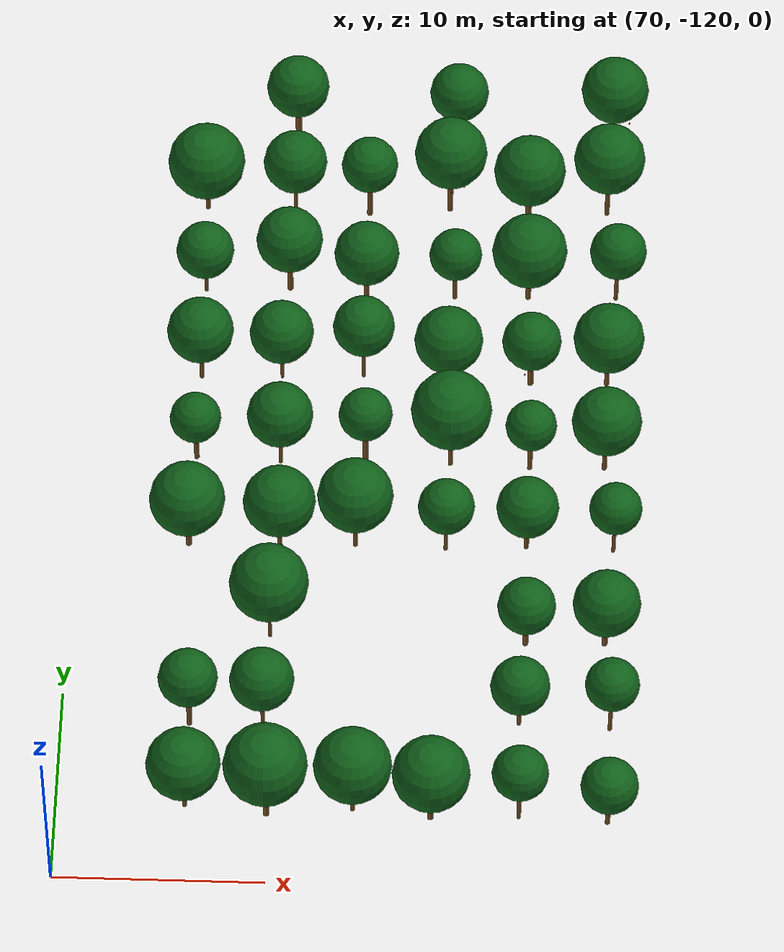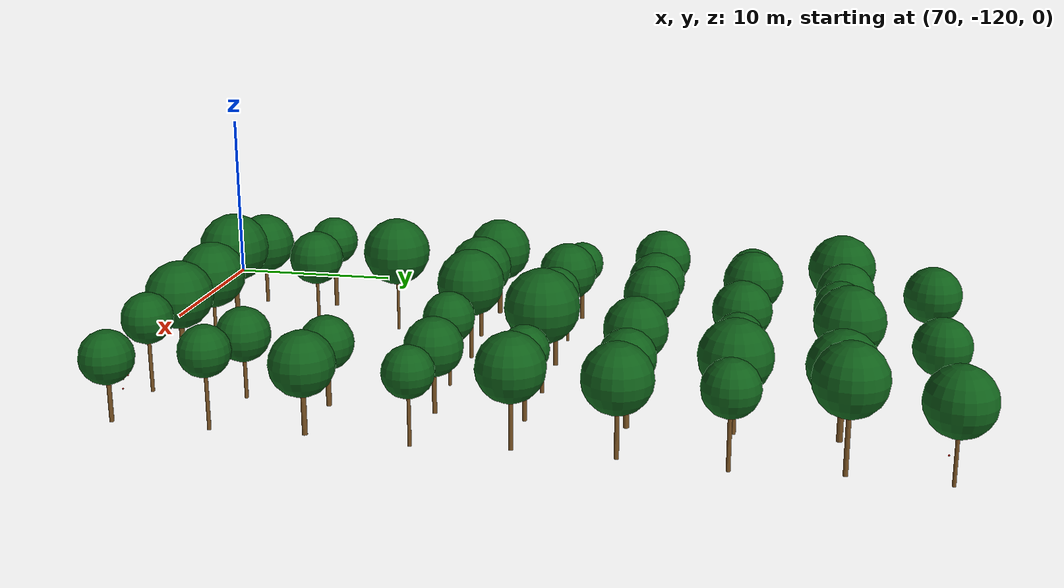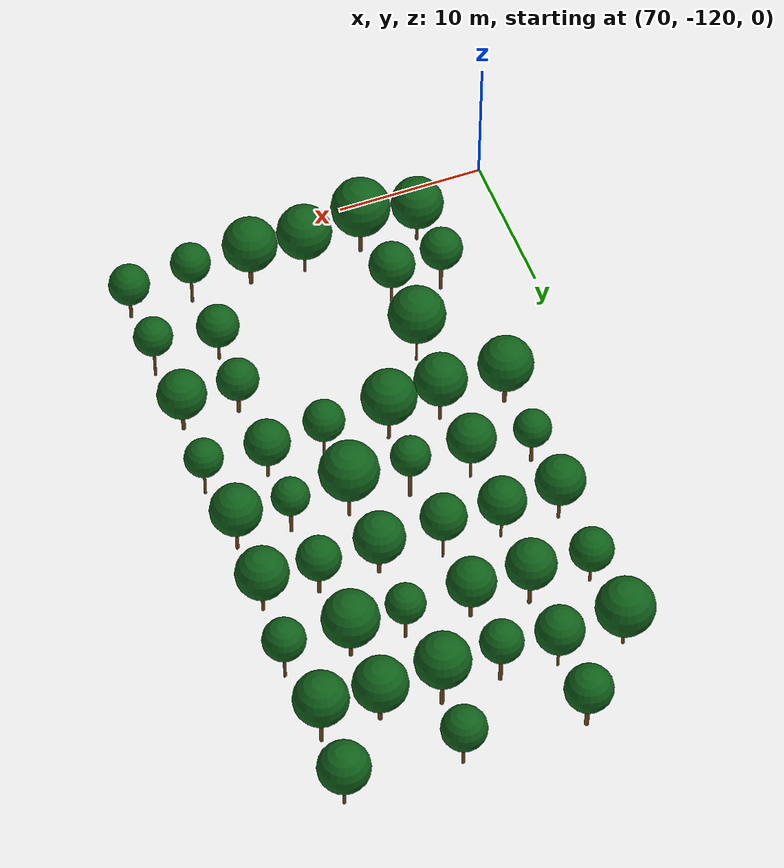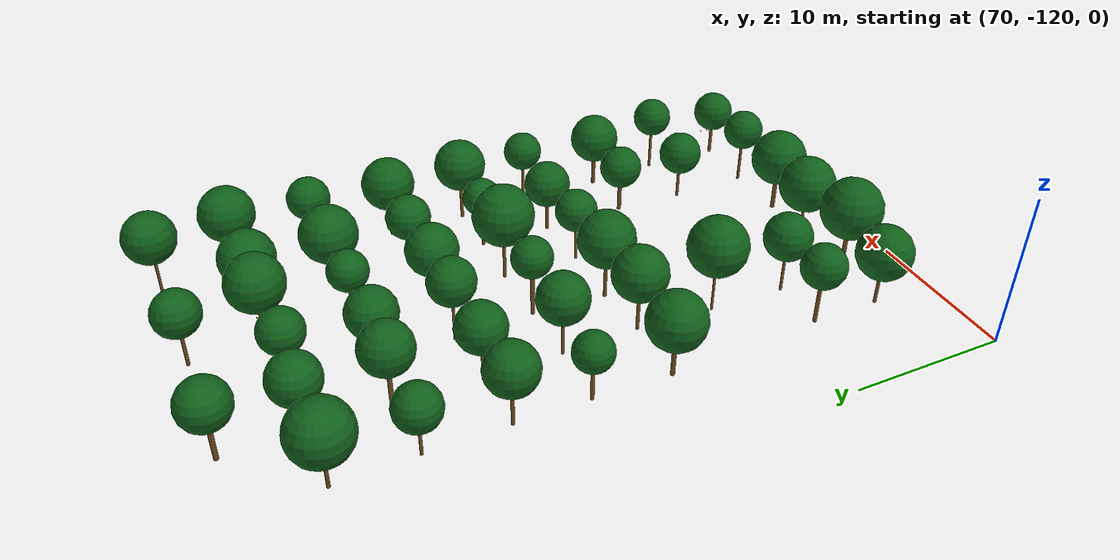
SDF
<sdf version="1.9">
 <world name="cheongsong_orchard">
  <model name="apple_tree_45">
   <static>true</static>
   <pose>76.07 -115.91 0 0 0 0</pose>
   <link name="link">
    <collision name="trunk_col">
     <pose>0 0 0.99 0 0 0</pose>
     <geometry><cylinder><radius>0.105</radius><length>1.99</length></cylinder></geometry>
    </collision>
    <visual name="trunk_vis">
     <pose>0 0 0.99 0 0 0</pose>
     <geometry><cylinder><radius>0.105</radius><length>1.99</length></cylinder></geometry>
     <material><ambient>0.35 0.22 0.08 1</ambient><diffuse>0.45 0.30 0.12 1</diffuse></material>
    </visual>
    <collision name="canopy_col">
     <pose>0 0 3.73 0 0 0</pose>
     <geometry><sphere><radius>1.75</radius></sphere></geometry>
    </collision>
    <visual name="canopy_vis">
     <pose>0 0 3.73 0 0 0</pose>
     <geometry><sphere><radius>1.75</radius></sphere></geometry>
     <material><ambient>0.04 0.28 0.06 1</ambient><diffuse>0.06 0.38 0.10 1</diffuse></material>
    </visual>
   </link>
  </model>
  <model name="apple_tree_46">
   <static>true</static>
   <pose>79.91 -116.28 0 0 0 0</pose>
   <link name="link">
    <collision name="trunk_col">
     <pose>0 0 1.25 0 0 0</pose>
     <geometry><cylinder><radius>0.141</radius><length>2.50</length></cylinder></geometry>
    </collision>
    <visual name="trunk_vis">
     <pose>0 0 1.25 0 0 0</pose>
     <geometry><cylinder><radius>0.141</radius><length>2.50</length></cylinder></geometry>
     <material><ambient>0.35 0.22 0.08 1</ambient><diffuse>0.45 0.30 0.12 1</diffuse></material>
    </visual>
    <collision name="canopy_col">
     <pose>0 0 4.47 0 0 0</pose>
     <geometry><sphere><radius>1.98</radius></sphere></geometry>
    </collision>
    <visual name="canopy_vis">
     <pose>0 0 4.47 0 0 0</pose>
     <geometry><sphere><radius>1.98</radius></sphere></geometry>
     <material><ambient>0.04 0.28 0.06 1</ambient><diffuse>0.06 0.38 0.10 1</diffuse></material>
    </visual>
   </link>
  </model>
  <model name="apple_tree_47">
   <static>true</static>
   <pose>83.96 -115.93 0 0 0 0</pose>
   <link name="link">
    <collision name="trunk_col">
     <pose>0 0 1.09 0 0 0</pose>
     <geometry><cylinder><radius>0.091</radius><length>2.18</length></cylinder></geometry>
    </collision>
    <visual name="trunk_vis">
     <pose>0 0 1.09 0 0 0</pose>
     <geometry><cylinder><radius>0.091</radius><length>2.18</length></cylinder></geometry>
     <material><ambient>0.35 0.22 0.08 1</ambient><diffuse>0.45 0.30 0.12 1</diffuse></material>
    </visual>
    <collision name="canopy_col">
     <pose>0 0 4.02 0 0 0</pose>
     <geometry><sphere><radius>1.84</radius></sphere></geometry>
    </collision>
    <visual name="canopy_vis">
     <pose>0 0 4.02 0 0 0</pose>
     <geometry><sphere><radius>1.84</radius></sphere></geometry>
     <material><ambient>0.04 0.28 0.06 1</ambient><diffuse>0.06 0.38 0.10 1</diffuse></material>
    </visual>
   </link>
  </model>
  <model name="apple_tree_48">
   <static>true</static>
   <pose>87.62 -116.24 0 0 0 0</pose>
   <link name="link">
    <collision name="trunk_col">
     <pose>0 0 1.06 0 0 0</pose>
     <geometry><cylinder><radius>0.145</radius><length>2.12</length></cylinder></geometry>
    </collision>
    <visual name="trunk_vis">
     <pose>0 0 1.06 0 0 0</pose>
     <geometry><cylinder><radius>0.145</radius><length>2.12</length></cylinder></geometry>
     <material><ambient>0.35 0.22 0.08 1</ambient><diffuse>0.45 0.30 0.12 1</diffuse></material>
    </visual>
    <collision name="canopy_col">
     <pose>0 0 3.95 0 0 0</pose>
     <geometry><sphere><radius>1.83</radius></sphere></geometry>
    </collision>
    <visual name="canopy_vis">
     <pose>0 0 3.95 0 0 0</pose>
     <geometry><sphere><radius>1.83</radius></sphere></geometry>
     <material><ambient>0.04 0.28 0.06 1</ambient><diffuse>0.06 0.38 0.10 1</diffuse></material>
    </visual>
   </link>
  </model>
  <model name="apple_tree_49">
   <static>true</static>
   <pose>91.76 -116.09 0 0 0 0</pose>
   <link name="link">
    <collision name="trunk_col">
     <pose>0 0 1.33 0 0 0</pose>
     <geometry><cylinder><radius>0.097</radius><length>2.67</length></cylinder></geometry>
    </collision>
    <visual name="trunk_vis">
     <pose>0 0 1.33 0 0 0</pose>
     <geometry><cylinder><radius>0.097</radius><length>2.67</length></cylinder></geometry>
     <material><ambient>0.35 0.22 0.08 1</ambient><diffuse>0.45 0.30 0.12 1</diffuse></material>
    </visual>
    <collision name="canopy_col">
     <pose>0 0 3.99 0 0 0</pose>
     <geometry><sphere><radius>1.33</radius></sphere></geometry>
    </collision>
    <visual name="canopy_vis">
     <pose>0 0 3.99 0 0 0</pose>
     <geometry><sphere><radius>1.33</radius></sphere></geometry>
     <material><ambient>0.04 0.28 0.06 1</ambient><diffuse>0.06 0.38 0.10 1</diffuse></material>
    </visual>
   </link>
  </model>
  <model name="apple_tree_50">
   <static>true</static>
   <pose>95.93 -116.26 0 0 0 0</pose>
   <link name="link">
    <collision name="trunk_col">
     <pose>0 0 0.99 0 0 0</pose>
     <geometry><cylinder><radius>0.113</radius><length>1.99</length></cylinder></geometry>
    </collision>
    <visual name="trunk_vis">
     <pose>0 0 0.99 0 0 0</pose>
     <geometry><cylinder><radius>0.113</radius><length>1.99</length></cylinder></geometry>
     <material><ambient>0.35 0.22 0.08 1</ambient><diffuse>0.45 0.30 0.12 1</diffuse></material>
    </visual>
    <collision name="canopy_col">
     <pose>0 0 3.35 0 0 0</pose>
     <geometry><sphere><radius>1.36</radius></sphere></geometry>
    </collision>
    <visual name="canopy_vis">
     <pose>0 0 3.35 0 0 0</pose>
     <geometry><sphere><radius>1.36</radius></sphere></geometry>
     <material><ambient>0.04 0.28 0.06 1</ambient><diffuse>0.06 0.38 0.10 1</diffuse></material>
    </visual>
   </link>
  </model>
  <model name="apple_tree_101">
   <static>true</static>
   <pose>76.09 -111.43 0 0 0 0</pose>
   <link name="link">
    <collision name="trunk_col">
     <pose>0 0 1.35 0 0 0</pose>
     <geometry><cylinder><radius>0.124</radius><length>2.69</length></cylinder></geometry>
    </collision>
    <visual name="trunk_vis">
     <pose>0 0 1.35 0 0 0</pose>
     <geometry><cylinder><radius>0.124</radius><length>2.69</length></cylinder></geometry>
     <material><ambient>0.35 0.22 0.08 1</ambient><diffuse>0.45 0.30 0.12 1</diffuse></material>
    </visual>
    <collision name="canopy_col">
     <pose>0 0 4.11 0 0 0</pose>
     <geometry><sphere><radius>1.41</radius></sphere></geometry>
    </collision>
    <visual name="canopy_vis">
     <pose>0 0 4.11 0 0 0</pose>
     <geometry><sphere><radius>1.41</radius></sphere></geometry>
     <material><ambient>0.04 0.28 0.06 1</ambient><diffuse>0.06 0.38 0.10 1</diffuse></material>
    </visual>
   </link>
  </model>
  <model name="apple_tree_102">
   <static>true</static>
   <pose>79.56 -111.35 0 0 0 0</pose>
   <link name="link">
    <collision name="trunk_col">
     <pose>0 0 1.24 0 0 0</pose>
     <geometry><cylinder><radius>0.091</radius><length>2.49</length></cylinder></geometry>
    </collision>
    <visual name="trunk_vis">
     <pose>0 0 1.24 0 0 0</pose>
     <geometry><cylinder><radius>0.091</radius><length>2.49</length></cylinder></geometry>
     <material><ambient>0.35 0.22 0.08 1</ambient><diffuse>0.45 0.30 0.12 1</diffuse></material>
    </visual>
    <collision name="canopy_col">
     <pose>0 0 4.02 0 0 0</pose>
     <geometry><sphere><radius>1.53</radius></sphere></geometry>
    </collision>
    <visual name="canopy_vis">
     <pose>0 0 4.02 0 0 0</pose>
     <geometry><sphere><radius>1.53</radius></sphere></geometry>
     <material><ambient>0.04 0.28 0.06 1</ambient><diffuse>0.06 0.38 0.10 1</diffuse></material>
    </visual>
   </link>
  </model>
  <model name="apple_tree_103">
   <static>true</static>
   <pose>91.68 -110.97 0 0 0 0</pose>
   <link name="link">
    <collision name="trunk_col">
     <pose>0 0 1.01 0 0 0</pose>
     <geometry><cylinder><radius>0.096</radius><length>2.02</length></cylinder></geometry>
    </collision>
    <visual name="trunk_vis">
     <pose>0 0 1.01 0 0 0</pose>
     <geometry><cylinder><radius>0.096</radius><length>2.02</length></cylinder></geometry>
     <material><ambient>0.35 0.22 0.08 1</ambient><diffuse>0.45 0.30 0.12 1</diffuse></material>
    </visual>
    <collision name="canopy_col">
     <pose>0 0 3.43 0 0 0</pose>
     <geometry><sphere><radius>1.41</radius></sphere></geometry>
    </collision>
    <visual name="canopy_vis">
     <pose>0 0 3.43 0 0 0</pose>
     <geometry><sphere><radius>1.41</radius></sphere></geometry>
     <material><ambient>0.04 0.28 0.06 1</ambient><diffuse>0.06 0.38 0.10 1</diffuse></material>
    </visual>
   </link>
  </model>
  <model name="apple_tree_104">
   <static>true</static>
   <pose>95.99 -111.14 0 0 0 0</pose>
   <link name="link">
    <collision name="trunk_col">
     <pose>0 0 1.37 0 0 0</pose>
     <geometry><cylinder><radius>0.094</radius><length>2.73</length></cylinder></geometry>
    </collision>
    <visual name="trunk_vis">
     <pose>0 0 1.37 0 0 0</pose>
     <geometry><cylinder><radius>0.094</radius><length>2.73</length></cylinder></geometry>
     <material><ambient>0.35 0.22 0.08 1</ambient><diffuse>0.45 0.30 0.12 1</diffuse></material>
    </visual>
    <collision name="canopy_col">
     <pose>0 0 4.03 0 0 0</pose>
     <geometry><sphere><radius>1.29</radius></sphere></geometry>
    </collision>
    <visual name="canopy_vis">
     <pose>0 0 4.03 0 0 0</pose>
     <geometry><sphere><radius>1.29</radius></sphere></geometry>
     <material><ambient>0.04 0.28 0.06 1</ambient><diffuse>0.06 0.38 0.10 1</diffuse></material>
    </visual>
   </link>
  </model>
  <model name="apple_tree_154">
   <static>true</static>
   <pose>79.71 -106.40 0 0 0 0</pose>
   <link name="link">
    <collision name="trunk_col">
     <pose>0 0 1.41 0 0 0</pose>
     <geometry><cylinder><radius>0.080</radius><length>2.83</length></cylinder></geometry>
    </collision>
    <visual name="trunk_vis">
     <pose>0 0 1.41 0 0 0</pose>
     <geometry><cylinder><radius>0.080</radius><length>2.83</length></cylinder></geometry>
     <material><ambient>0.35 0.22 0.08 1</ambient><diffuse>0.45 0.30 0.12 1</diffuse></material>
    </visual>
    <collision name="canopy_col">
     <pose>0 0 4.71 0 0 0</pose>
     <geometry><sphere><radius>1.89</radius></sphere></geometry>
    </collision>
    <visual name="canopy_vis">
     <pose>0 0 4.71 0 0 0</pose>
     <geometry><sphere><radius>1.89</radius></sphere></geometry>
     <material><ambient>0.04 0.28 0.06 1</ambient><diffuse>0.06 0.38 0.10 1</diffuse></material>
    </visual>
   </link>
  </model>
  <model name="apple_tree_155">
   <static>true</static>
   <pose>91.91 -106.47 0 0 0 0</pose>
   <link name="link">
    <collision name="trunk_col">
     <pose>0 0 0.98 0 0 0</pose>
     <geometry><cylinder><radius>0.135</radius><length>1.96</length></cylinder></geometry>
    </collision>
    <visual name="trunk_vis">
     <pose>0 0 0.98 0 0 0</pose>
     <geometry><cylinder><radius>0.135</radius><length>1.96</length></cylinder></geometry>
     <material><ambient>0.35 0.22 0.08 1</ambient><diffuse>0.45 0.30 0.12 1</diffuse></material>
    </visual>
    <collision name="canopy_col">
     <pose>0 0 3.35 0 0 0</pose>
     <geometry><sphere><radius>1.39</radius></sphere></geometry>
    </collision>
    <visual name="canopy_vis">
     <pose>0 0 3.35 0 0 0</pose>
     <geometry><sphere><radius>1.39</radius></sphere></geometry>
     <material><ambient>0.04 0.28 0.06 1</ambient><diffuse>0.06 0.38 0.10 1</diffuse></material>
    </visual>
   </link>
  </model>
  <model name="apple_tree_156">
   <static>true</static>
   <pose>95.70 -106.38 0 0 0 0</pose>
   <link name="link">
    <collision name="trunk_col">
     <pose>0 0 1.00 0 0 0</pose>
     <geometry><cylinder><radius>0.132</radius><length>2.00</length></cylinder></geometry>
    </collision>
    <visual name="trunk_vis">
     <pose>0 0 1.00 0 0 0</pose>
     <geometry><cylinder><radius>0.132</radius><length>2.00</length></cylinder></geometry>
     <material><ambient>0.35 0.22 0.08 1</ambient><diffuse>0.45 0.30 0.12 1</diffuse></material>
    </visual>
    <collision name="canopy_col">
     <pose>0 0 3.62 0 0 0</pose>
     <geometry><sphere><radius>1.62</radius></sphere></geometry>
    </collision>
    <visual name="canopy_vis">
     <pose>0 0 3.62 0 0 0</pose>
     <geometry><sphere><radius>1.62</radius></sphere></geometry>
     <material><ambient>0.04 0.28 0.06 1</ambient><diffuse>0.06 0.38 0.10 1</diffuse></material>
    </visual>
   </link>
  </model>
  <model name="apple_tree_199">
   <static>true</static>
   <pose>75.59 -101.26 0 0 0 0</pose>
   <link name="link">
    <collision name="trunk_col">
     <pose>0 0 1.05 0 0 0</pose>
     <geometry><cylinder><radius>0.138</radius><length>2.11</length></cylinder></geometry>
    </collision>
    <visual name="trunk_vis">
     <pose>0 0 1.05 0 0 0</pose>
     <geometry><cylinder><radius>0.138</radius><length>2.11</length></cylinder></geometry>
     <material><ambient>0.35 0.22 0.08 1</ambient><diffuse>0.45 0.30 0.12 1</diffuse></material>
    </visual>
    <collision name="canopy_col">
     <pose>0 0 3.93 0 0 0</pose>
     <geometry><sphere><radius>1.82</radius></sphere></geometry>
    </collision>
    <visual name="canopy_vis">
     <pose>0 0 3.93 0 0 0</pose>
     <geometry><sphere><radius>1.82</radius></sphere></geometry>
     <material><ambient>0.04 0.28 0.06 1</ambient><diffuse>0.06 0.38 0.10 1</diffuse></material>
    </visual>
   </link>
  </model>
  <model name="apple_tree_200">
   <static>true</static>
   <pose>80.00 -101.39 0 0 0 0</pose>
   <link name="link">
    <collision name="trunk_col">
     <pose>0 0 1.19 0 0 0</pose>
     <geometry><cylinder><radius>0.109</radius><length>2.38</length></cylinder></geometry>
    </collision>
    <visual name="trunk_vis">
     <pose>0 0 1.19 0 0 0</pose>
     <geometry><cylinder><radius>0.109</radius><length>2.38</length></cylinder></geometry>
     <material><ambient>0.35 0.22 0.08 1</ambient><diffuse>0.45 0.30 0.12 1</diffuse></material>
    </visual>
    <collision name="canopy_col">
     <pose>0 0 4.12 0 0 0</pose>
     <geometry><sphere><radius>1.74</radius></sphere></geometry>
    </collision>
    <visual name="canopy_vis">
     <pose>0 0 4.12 0 0 0</pose>
     <geometry><sphere><radius>1.74</radius></sphere></geometry>
     <material><ambient>0.04 0.28 0.06 1</ambient><diffuse>0.06 0.38 0.10 1</diffuse></material>
    </visual>
   </link>
  </model>
  <model name="apple_tree_201">
   <static>true</static>
   <pose>83.63 -101.08 0 0 0 0</pose>
   <link name="link">
    <collision name="trunk_col">
     <pose>0 0 1.25 0 0 0</pose>
     <geometry><cylinder><radius>0.111</radius><length>2.51</length></cylinder></geometry>
    </collision>
    <visual name="trunk_vis">
     <pose>0 0 1.25 0 0 0</pose>
     <geometry><cylinder><radius>0.111</radius><length>2.51</length></cylinder></geometry>
     <material><ambient>0.35 0.22 0.08 1</ambient><diffuse>0.45 0.30 0.12 1</diffuse></material>
    </visual>
    <collision name="canopy_col">
     <pose>0 0 4.32 0 0 0</pose>
     <geometry><sphere><radius>1.82</radius></sphere></geometry>
    </collision>
    <visual name="canopy_vis">
     <pose>0 0 4.32 0 0 0</pose>
     <geometry><sphere><radius>1.82</radius></sphere></geometry>
     <material><ambient>0.04 0.28 0.06 1</ambient><diffuse>0.06 0.38 0.10 1</diffuse></material>
    </visual>
   </link>
  </model>
  <model name="apple_tree_202">
   <static>true</static>
   <pose>87.98 -101.19 0 0 0 0</pose>
   <link name="link">
    <collision name="trunk_col">
     <pose>0 0 1.18 0 0 0</pose>
     <geometry><cylinder><radius>0.091</radius><length>2.36</length></cylinder></geometry>
    </collision>
    <visual name="trunk_vis">
     <pose>0 0 1.18 0 0 0</pose>
     <geometry><cylinder><radius>0.091</radius><length>2.36</length></cylinder></geometry>
     <material><ambient>0.35 0.22 0.08 1</ambient><diffuse>0.45 0.30 0.12 1</diffuse></material>
    </visual>
    <collision name="canopy_col">
     <pose>0 0 3.72 0 0 0</pose>
     <geometry><sphere><radius>1.36</radius></sphere></geometry>
    </collision>
    <visual name="canopy_vis">
     <pose>0 0 3.72 0 0 0</pose>
     <geometry><sphere><radius>1.36</radius></sphere></geometry>
     <material><ambient>0.04 0.28 0.06 1</ambient><diffuse>0.06 0.38 0.10 1</diffuse></material>
    </visual>
   </link>
  </model>
  <model name="apple_tree_203">
   <static>true</static>
   <pose>91.87 -100.97 0 0 0 0</pose>
   <link name="link">
    <collision name="trunk_col">
     <pose>0 0 1.00 0 0 0</pose>
     <geometry><cylinder><radius>0.114</radius><length>2.00</length></cylinder></geometry>
    </collision>
    <visual name="trunk_vis">
     <pose>0 0 1.00 0 0 0</pose>
     <geometry><cylinder><radius>0.114</radius><length>2.00</length></cylinder></geometry>
     <material><ambient>0.35 0.22 0.08 1</ambient><diffuse>0.45 0.30 0.12 1</diffuse></material>
    </visual>
    <collision name="canopy_col">
     <pose>0 0 3.50 0 0 0</pose>
     <geometry><sphere><radius>1.50</radius></sphere></geometry>
    </collision>
    <visual name="canopy_vis">
     <pose>0 0 3.50 0 0 0</pose>
     <geometry><sphere><radius>1.50</radius></sphere></geometry>
     <material><ambient>0.04 0.28 0.06 1</ambient><diffuse>0.06 0.38 0.10 1</diffuse></material>
    </visual>
   </link>
  </model>
  <model name="apple_tree_204">
   <static>true</static>
   <pose>96.07 -101.06 0 0 0 0</pose>
   <link name="link">
    <collision name="trunk_col">
     <pose>0 0 1.23 0 0 0</pose>
     <geometry><cylinder><radius>0.089</radius><length>2.45</length></cylinder></geometry>
    </collision>
    <visual name="trunk_vis">
     <pose>0 0 1.23 0 0 0</pose>
     <geometry><cylinder><radius>0.089</radius><length>2.45</length></cylinder></geometry>
     <material><ambient>0.35 0.22 0.08 1</ambient><diffuse>0.45 0.30 0.12 1</diffuse></material>
    </visual>
    <collision name="canopy_col">
     <pose>0 0 3.72 0 0 0</pose>
     <geometry><sphere><radius>1.27</radius></sphere></geometry>
    </collision>
    <visual name="canopy_vis">
     <pose>0 0 3.72 0 0 0</pose>
     <geometry><sphere><radius>1.27</radius></sphere></geometry>
     <material><ambient>0.04 0.28 0.06 1</ambient><diffuse>0.06 0.38 0.10 1</diffuse></material>
    </visual>
   </link>
  </model>
  <model name="apple_tree_250">
   <static>true</static>
   <pose>75.75 -96.22 0 0 0 0</pose>
   <link name="link">
    <collision name="trunk_col">
     <pose>0 0 1.09 0 0 0</pose>
     <geometry><cylinder><radius>0.121</radius><length>2.18</length></cylinder></geometry>
    </collision>
    <visual name="trunk_vis">
     <pose>0 0 1.09 0 0 0</pose>
     <geometry><cylinder><radius>0.121</radius><length>2.18</length></cylinder></geometry>
     <material><ambient>0.35 0.22 0.08 1</ambient><diffuse>0.45 0.30 0.12 1</diffuse></material>
    </visual>
    <collision name="canopy_col">
     <pose>0 0 3.42 0 0 0</pose>
     <geometry><sphere><radius>1.24</radius></sphere></geometry>
    </collision>
    <visual name="canopy_vis">
     <pose>0 0 3.42 0 0 0</pose>
     <geometry><sphere><radius>1.24</radius></sphere></geometry>
     <material><ambient>0.04 0.28 0.06 1</ambient><diffuse>0.06 0.38 0.10 1</diffuse></material>
    </visual>
   </link>
  </model>
  <model name="apple_tree_251">
   <static>true</static>
   <pose>79.85 -96.37 0 0 0 0</pose>
   <link name="link">
    <collision name="trunk_col">
     <pose>0 0 1.24 0 0 0</pose>
     <geometry><cylinder><radius>0.085</radius><length>2.49</length></cylinder></geometry>
    </collision>
    <visual name="trunk_vis">
     <pose>0 0 1.24 0 0 0</pose>
     <geometry><cylinder><radius>0.085</radius><length>2.49</length></cylinder></geometry>
     <material><ambient>0.35 0.22 0.08 1</ambient><diffuse>0.45 0.30 0.12 1</diffuse></material>
    </visual>
    <collision name="canopy_col">
     <pose>0 0 4.09 0 0 0</pose>
     <geometry><sphere><radius>1.60</radius></sphere></geometry>
    </collision>
    <visual name="canopy_vis">
     <pose>0 0 4.09 0 0 0</pose>
     <geometry><sphere><radius>1.60</radius></sphere></geometry>
     <material><ambient>0.04 0.28 0.06 1</ambient><diffuse>0.06 0.38 0.10 1</diffuse></material>
    </visual>
   </link>
  </model>
  <model name="apple_tree_252">
   <static>true</static>
   <pose>83.97 -96.32 0 0 0 0</pose>
   <link name="link">
    <collision name="trunk_col">
     <pose>0 0 1.46 0 0 0</pose>
     <geometry><cylinder><radius>0.128</radius><length>2.91</length></cylinder></geometry>
    </collision>
    <visual name="trunk_vis">
     <pose>0 0 1.46 0 0 0</pose>
     <geometry><cylinder><radius>0.128</radius><length>2.91</length></cylinder></geometry>
     <material><ambient>0.35 0.22 0.08 1</ambient><diffuse>0.45 0.30 0.12 1</diffuse></material>
    </visual>
    <collision name="canopy_col">
     <pose>0 0 4.21 0 0 0</pose>
     <geometry><sphere><radius>1.30</radius></sphere></geometry>
    </collision>
    <visual name="canopy_vis">
     <pose>0 0 4.21 0 0 0</pose>
     <geometry><sphere><radius>1.30</radius></sphere></geometry>
     <material><ambient>0.04 0.28 0.06 1</ambient><diffuse>0.06 0.38 0.10 1</diffuse></material>
    </visual>
   </link>
  </model>
  <model name="apple_tree_253">
   <static>true</static>
   <pose>88.10 -96.25 0 0 0 0</pose>
   <link name="link">
    <collision name="trunk_col">
     <pose>0 0 1.36 0 0 0</pose>
     <geometry><cylinder><radius>0.104</radius><length>2.73</length></cylinder></geometry>
    </collision>
    <visual name="trunk_vis">
     <pose>0 0 1.36 0 0 0</pose>
     <geometry><cylinder><radius>0.104</radius><length>2.73</length></cylinder></geometry>
     <material><ambient>0.35 0.22 0.08 1</ambient><diffuse>0.45 0.30 0.12 1</diffuse></material>
    </visual>
    <collision name="canopy_col">
     <pose>0 0 4.68 0 0 0</pose>
     <geometry><sphere><radius>1.95</radius></sphere></geometry>
    </collision>
    <visual name="canopy_vis">
     <pose>0 0 4.68 0 0 0</pose>
     <geometry><sphere><radius>1.95</radius></sphere></geometry>
     <material><ambient>0.04 0.28 0.06 1</ambient><diffuse>0.06 0.38 0.10 1</diffuse></material>
    </visual>
   </link>
  </model>
  <model name="apple_tree_254">
   <static>true</static>
   <pose>91.96 -96.37 0 0 0 0</pose>
   <link name="link">
    <collision name="trunk_col">
     <pose>0 0 1.22 0 0 0</pose>
     <geometry><cylinder><radius>0.115</radius><length>2.45</length></cylinder></geometry>
    </collision>
    <visual name="trunk_vis">
     <pose>0 0 1.22 0 0 0</pose>
     <geometry><cylinder><radius>0.115</radius><length>2.45</length></cylinder></geometry>
     <material><ambient>0.35 0.22 0.08 1</ambient><diffuse>0.45 0.30 0.12 1</diffuse></material>
    </visual>
    <collision name="canopy_col">
     <pose>0 0 3.68 0 0 0</pose>
     <geometry><sphere><radius>1.24</radius></sphere></geometry>
    </collision>
    <visual name="canopy_vis">
     <pose>0 0 3.68 0 0 0</pose>
     <geometry><sphere><radius>1.24</radius></sphere></geometry>
     <material><ambient>0.04 0.28 0.06 1</ambient><diffuse>0.06 0.38 0.10 1</diffuse></material>
    </visual>
   </link>
  </model>
  <model name="apple_tree_255">
   <static>true</static>
   <pose>95.59 -96.29 0 0 0 0</pose>
   <link name="link">
    <collision name="trunk_col">
     <pose>0 0 1.21 0 0 0</pose>
     <geometry><cylinder><radius>0.112</radius><length>2.41</length></cylinder></geometry>
    </collision>
    <visual name="trunk_vis">
     <pose>0 0 1.21 0 0 0</pose>
     <geometry><cylinder><radius>0.112</radius><length>2.41</length></cylinder></geometry>
     <material><ambient>0.35 0.22 0.08 1</ambient><diffuse>0.45 0.30 0.12 1</diffuse></material>
    </visual>
    <collision name="canopy_col">
     <pose>0 0 4.10 0 0 0</pose>
     <geometry><sphere><radius>1.69</radius></sphere></geometry>
    </collision>
    <visual name="canopy_vis">
     <pose>0 0 4.10 0 0 0</pose>
     <geometry><sphere><radius>1.69</radius></sphere></geometry>
     <material><ambient>0.04 0.28 0.06 1</ambient><diffuse>0.06 0.38 0.10 1</diffuse></material>
    </visual>
   </link>
  </model>
  <model name="apple_tree_306">
   <static>true</static>
   <pose>75.79 -91.45 0 0 0 0</pose>
   <link name="link">
    <collision name="trunk_col">
     <pose>0 0 1.18 0 0 0</pose>
     <geometry><cylinder><radius>0.109</radius><length>2.35</length></cylinder></geometry>
    </collision>
    <visual name="trunk_vis">
     <pose>0 0 1.18 0 0 0</pose>
     <geometry><cylinder><radius>0.109</radius><length>2.35</length></cylinder></geometry>
     <material><ambient>0.35 0.22 0.08 1</ambient><diffuse>0.45 0.30 0.12 1</diffuse></material>
    </visual>
    <collision name="canopy_col">
     <pose>0 0 3.98 0 0 0</pose>
     <geometry><sphere><radius>1.62</radius></sphere></geometry>
    </collision>
    <visual name="canopy_vis">
     <pose>0 0 3.98 0 0 0</pose>
     <geometry><sphere><radius>1.62</radius></sphere></geometry>
     <material><ambient>0.04 0.28 0.06 1</ambient><diffuse>0.06 0.38 0.10 1</diffuse></material>
    </visual>
   </link>
  </model>
  <model name="apple_tree_307">
   <static>true</static>
   <pose>79.74 -91.34 0 0 0 0</pose>
   <link name="link">
    <collision name="trunk_col">
     <pose>0 0 1.14 0 0 0</pose>
     <geometry><cylinder><radius>0.086</radius><length>2.27</length></cylinder></geometry>
    </collision>
    <visual name="trunk_vis">
     <pose>0 0 1.14 0 0 0</pose>
     <geometry><cylinder><radius>0.086</radius><length>2.27</length></cylinder></geometry>
     <material><ambient>0.35 0.22 0.08 1</ambient><diffuse>0.45 0.30 0.12 1</diffuse></material>
    </visual>
    <collision name="canopy_col">
     <pose>0 0 3.83 0 0 0</pose>
     <geometry><sphere><radius>1.56</radius></sphere></geometry>
    </collision>
    <visual name="canopy_vis">
     <pose>0 0 3.83 0 0 0</pose>
     <geometry><sphere><radius>1.56</radius></sphere></geometry>
     <material><ambient>0.04 0.28 0.06 1</ambient><diffuse>0.06 0.38 0.10 1</diffuse></material>
    </visual>
   </link>
  </model>
  <model name="apple_tree_308">
   <static>true</static>
   <pose>83.73 -91.17 0 0 0 0</pose>
   <link name="link">
    <collision name="trunk_col">
     <pose>0 0 1.38 0 0 0</pose>
     <geometry><cylinder><radius>0.084</radius><length>2.76</length></cylinder></geometry>
    </collision>
    <visual name="trunk_vis">
     <pose>0 0 1.38 0 0 0</pose>
     <geometry><cylinder><radius>0.084</radius><length>2.76</length></cylinder></geometry>
     <material><ambient>0.35 0.22 0.08 1</ambient><diffuse>0.45 0.30 0.12 1</diffuse></material>
    </visual>
    <collision name="canopy_col">
     <pose>0 0 4.26 0 0 0</pose>
     <geometry><sphere><radius>1.50</radius></sphere></geometry>
    </collision>
    <visual name="canopy_vis">
     <pose>0 0 4.26 0 0 0</pose>
     <geometry><sphere><radius>1.50</radius></sphere></geometry>
     <material><ambient>0.04 0.28 0.06 1</ambient><diffuse>0.06 0.38 0.10 1</diffuse></material>
    </visual>
   </link>
  </model>
  <model name="apple_tree_309">
   <static>true</static>
   <pose>87.87 -91.47 0 0 0 0</pose>
   <link name="link">
    <collision name="trunk_col">
     <pose>0 0 1.01 0 0 0</pose>
     <geometry><cylinder><radius>0.136</radius><length>2.02</length></cylinder></geometry>
    </collision>
    <visual name="trunk_vis">
     <pose>0 0 1.01 0 0 0</pose>
     <geometry><cylinder><radius>0.136</radius><length>2.02</length></cylinder></geometry>
     <material><ambient>0.35 0.22 0.08 1</ambient><diffuse>0.45 0.30 0.12 1</diffuse></material>
    </visual>
    <collision name="canopy_col">
     <pose>0 0 3.69 0 0 0</pose>
     <geometry><sphere><radius>1.67</radius></sphere></geometry>
    </collision>
    <visual name="canopy_vis">
     <pose>0 0 3.69 0 0 0</pose>
     <geometry><sphere><radius>1.67</radius></sphere></geometry>
     <material><ambient>0.04 0.28 0.06 1</ambient><diffuse>0.06 0.38 0.10 1</diffuse></material>
    </visual>
   </link>
  </model>
  <model name="apple_tree_310">
   <static>true</static>
   <pose>91.91 -91.36 0 0 0 0</pose>
   <link name="link">
    <collision name="trunk_col">
     <pose>0 0 1.08 0 0 0</pose>
     <geometry><cylinder><radius>0.143</radius><length>2.15</length></cylinder></geometry>
    </collision>
    <visual name="trunk_vis">
     <pose>0 0 1.08 0 0 0</pose>
     <geometry><cylinder><radius>0.143</radius><length>2.15</length></cylinder></geometry>
     <material><ambient>0.35 0.22 0.08 1</ambient><diffuse>0.45 0.30 0.12 1</diffuse></material>
    </visual>
    <collision name="canopy_col">
     <pose>0 0 3.60 0 0 0</pose>
     <geometry><sphere><radius>1.44</radius></sphere></geometry>
    </collision>
    <visual name="canopy_vis">
     <pose>0 0 3.60 0 0 0</pose>
     <geometry><sphere><radius>1.44</radius></sphere></geometry>
     <material><ambient>0.04 0.28 0.06 1</ambient><diffuse>0.06 0.38 0.10 1</diffuse></material>
    </visual>
   </link>
  </model>
  <model name="apple_tree_311">
   <static>true</static>
   <pose>95.65 -91.30 0 0 0 0</pose>
   <link name="link">
    <collision name="trunk_col">
     <pose>0 0 1.11 0 0 0</pose>
     <geometry><cylinder><radius>0.113</radius><length>2.23</length></cylinder></geometry>
    </collision>
    <visual name="trunk_vis">
     <pose>0 0 1.11 0 0 0</pose>
     <geometry><cylinder><radius>0.113</radius><length>2.23</length></cylinder></geometry>
     <material><ambient>0.35 0.22 0.08 1</ambient><diffuse>0.45 0.30 0.12 1</diffuse></material>
    </visual>
    <collision name="canopy_col">
     <pose>0 0 3.94 0 0 0</pose>
     <geometry><sphere><radius>1.72</radius></sphere></geometry>
    </collision>
    <visual name="canopy_vis">
     <pose>0 0 3.94 0 0 0</pose>
     <geometry><sphere><radius>1.72</radius></sphere></geometry>
     <material><ambient>0.04 0.28 0.06 1</ambient><diffuse>0.06 0.38 0.10 1</diffuse></material>
    </visual>
   </link>
  </model>
  <model name="apple_tree_361">
   <static>true</static>
   <pose>75.78 -86.23 0 0 0 0</pose>
   <link name="link">
    <collision name="trunk_col">
     <pose>0 0 0.98 0 0 0</pose>
     <geometry><cylinder><radius>0.095</radius><length>1.95</length></cylinder></geometry>
    </collision>
    <visual name="trunk_vis">
     <pose>0 0 0.98 0 0 0</pose>
     <geometry><cylinder><radius>0.095</radius><length>1.95</length></cylinder></geometry>
     <material><ambient>0.35 0.22 0.08 1</ambient><diffuse>0.45 0.30 0.12 1</diffuse></material>
    </visual>
    <collision name="canopy_col">
     <pose>0 0 3.38 0 0 0</pose>
     <geometry><sphere><radius>1.42</radius></sphere></geometry>
    </collision>
    <visual name="canopy_vis">
     <pose>0 0 3.38 0 0 0</pose>
     <geometry><sphere><radius>1.42</radius></sphere></geometry>
     <material><ambient>0.04 0.28 0.06 1</ambient><diffuse>0.06 0.38 0.10 1</diffuse></material>
    </visual>
   </link>
  </model>
  <model name="apple_tree_362">
   <static>true</static>
   <pose>79.93 -86.01 0 0 0 0</pose>
   <link name="link">
    <collision name="trunk_col">
     <pose>0 0 1.26 0 0 0</pose>
     <geometry><cylinder><radius>0.136</radius><length>2.51</length></cylinder></geometry>
    </collision>
    <visual name="trunk_vis">
     <pose>0 0 1.26 0 0 0</pose>
     <geometry><cylinder><radius>0.136</radius><length>2.51</length></cylinder></geometry>
     <material><ambient>0.35 0.22 0.08 1</ambient><diffuse>0.45 0.30 0.12 1</diffuse></material>
    </visual>
    <collision name="canopy_col">
     <pose>0 0 4.14 0 0 0</pose>
     <geometry><sphere><radius>1.63</radius></sphere></geometry>
    </collision>
    <visual name="canopy_vis">
     <pose>0 0 4.14 0 0 0</pose>
     <geometry><sphere><radius>1.63</radius></sphere></geometry>
     <material><ambient>0.04 0.28 0.06 1</ambient><diffuse>0.06 0.38 0.10 1</diffuse></material>
    </visual>
   </link>
  </model>
  <model name="apple_tree_363">
   <static>true</static>
   <pose>83.73 -86.37 0 0 0 0</pose>
   <link name="link">
    <collision name="trunk_col">
     <pose>0 0 1.03 0 0 0</pose>
     <geometry><cylinder><radius>0.127</radius><length>2.06</length></cylinder></geometry>
    </collision>
    <visual name="trunk_vis">
     <pose>0 0 1.03 0 0 0</pose>
     <geometry><cylinder><radius>0.127</radius><length>2.06</length></cylinder></geometry>
     <material><ambient>0.35 0.22 0.08 1</ambient><diffuse>0.45 0.30 0.12 1</diffuse></material>
    </visual>
    <collision name="canopy_col">
     <pose>0 0 3.65 0 0 0</pose>
     <geometry><sphere><radius>1.59</radius></sphere></geometry>
    </collision>
    <visual name="canopy_vis">
     <pose>0 0 3.65 0 0 0</pose>
     <geometry><sphere><radius>1.59</radius></sphere></geometry>
     <material><ambient>0.04 0.28 0.06 1</ambient><diffuse>0.06 0.38 0.10 1</diffuse></material>
    </visual>
   </link>
  </model>
  <model name="apple_tree_364">
   <static>true</static>
   <pose>88.09 -86.30 0 0 0 0</pose>
   <link name="link">
    <collision name="trunk_col">
     <pose>0 0 1.16 0 0 0</pose>
     <geometry><cylinder><radius>0.107</radius><length>2.33</length></cylinder></geometry>
    </collision>
    <visual name="trunk_vis">
     <pose>0 0 1.16 0 0 0</pose>
     <geometry><cylinder><radius>0.107</radius><length>2.33</length></cylinder></geometry>
     <material><ambient>0.35 0.22 0.08 1</ambient><diffuse>0.45 0.30 0.12 1</diffuse></material>
    </visual>
    <collision name="canopy_col">
     <pose>0 0 3.62 0 0 0</pose>
     <geometry><sphere><radius>1.29</radius></sphere></geometry>
    </collision>
    <visual name="canopy_vis">
     <pose>0 0 3.62 0 0 0</pose>
     <geometry><sphere><radius>1.29</radius></sphere></geometry>
     <material><ambient>0.04 0.28 0.06 1</ambient><diffuse>0.06 0.38 0.10 1</diffuse></material>
    </visual>
   </link>
  </model>
  <model name="apple_tree_365">
   <static>true</static>
   <pose>91.72 -86.21 0 0 0 0</pose>
   <link name="link">
    <collision name="trunk_col">
     <pose>0 0 1.06 0 0 0</pose>
     <geometry><cylinder><radius>0.127</radius><length>2.12</length></cylinder></geometry>
    </collision>
    <visual name="trunk_vis">
     <pose>0 0 1.06 0 0 0</pose>
     <geometry><cylinder><radius>0.127</radius><length>2.12</length></cylinder></geometry>
     <material><ambient>0.35 0.22 0.08 1</ambient><diffuse>0.45 0.30 0.12 1</diffuse></material>
    </visual>
    <collision name="canopy_col">
     <pose>0 0 3.96 0 0 0</pose>
     <geometry><sphere><radius>1.84</radius></sphere></geometry>
    </collision>
    <visual name="canopy_vis">
     <pose>0 0 3.96 0 0 0</pose>
     <geometry><sphere><radius>1.84</radius></sphere></geometry>
     <material><ambient>0.04 0.28 0.06 1</ambient><diffuse>0.06 0.38 0.10 1</diffuse></material>
    </visual>
   </link>
  </model>
  <model name="apple_tree_366">
   <static>true</static>
   <pose>96.06 -86.14 0 0 0 0</pose>
   <link name="link">
    <collision name="trunk_col">
     <pose>0 0 1.30 0 0 0</pose>
     <geometry><cylinder><radius>0.102</radius><length>2.61</length></cylinder></geometry>
    </collision>
    <visual name="trunk_vis">
     <pose>0 0 1.30 0 0 0</pose>
     <geometry><cylinder><radius>0.102</radius><length>2.61</length></cylinder></geometry>
     <material><ambient>0.35 0.22 0.08 1</ambient><diffuse>0.45 0.30 0.12 1</diffuse></material>
    </visual>
    <collision name="canopy_col">
     <pose>0 0 4.00 0 0 0</pose>
     <geometry><sphere><radius>1.39</radius></sphere></geometry>
    </collision>
    <visual name="canopy_vis">
     <pose>0 0 4.00 0 0 0</pose>
     <geometry><sphere><radius>1.39</radius></sphere></geometry>
     <material><ambient>0.04 0.28 0.06 1</ambient><diffuse>0.06 0.38 0.10 1</diffuse></material>
    </visual>
   </link>
  </model>
  <model name="apple_tree_417">
   <static>true</static>
   <pose>75.64 -81.18 0 0 0 0</pose>
   <link name="link">
    <collision name="trunk_col">
     <pose>0 0 1.00 0 0 0</pose>
     <geometry><cylinder><radius>0.108</radius><length>1.99</length></cylinder></geometry>
    </collision>
    <visual name="trunk_vis">
     <pose>0 0 1.00 0 0 0</pose>
     <geometry><cylinder><radius>0.108</radius><length>1.99</length></cylinder></geometry>
     <material><ambient>0.35 0.22 0.08 1</ambient><diffuse>0.45 0.30 0.12 1</diffuse></material>
    </visual>
    <collision name="canopy_col">
     <pose>0 0 3.90 0 0 0</pose>
     <geometry><sphere><radius>1.90</radius></sphere></geometry>
    </collision>
    <visual name="canopy_vis">
     <pose>0 0 3.90 0 0 0</pose>
     <geometry><sphere><radius>1.90</radius></sphere></geometry>
     <material><ambient>0.04 0.28 0.06 1</ambient><diffuse>0.06 0.38 0.10 1</diffuse></material>
    </visual>
   </link>
  </model>
  <model name="apple_tree_418">
   <static>true</static>
   <pose>80.03 -81.03 0 0 0 0</pose>
   <link name="link">
    <collision name="trunk_col">
     <pose>0 0 1.13 0 0 0</pose>
     <geometry><cylinder><radius>0.086</radius><length>2.25</length></cylinder></geometry>
    </collision>
    <visual name="trunk_vis">
     <pose>0 0 1.13 0 0 0</pose>
     <geometry><cylinder><radius>0.086</radius><length>2.25</length></cylinder></geometry>
     <material><ambient>0.35 0.22 0.08 1</ambient><diffuse>0.45 0.30 0.12 1</diffuse></material>
    </visual>
    <collision name="canopy_col">
     <pose>0 0 3.82 0 0 0</pose>
     <geometry><sphere><radius>1.57</radius></sphere></geometry>
    </collision>
    <visual name="canopy_vis">
     <pose>0 0 3.82 0 0 0</pose>
     <geometry><sphere><radius>1.57</radius></sphere></geometry>
     <material><ambient>0.04 0.28 0.06 1</ambient><diffuse>0.06 0.38 0.10 1</diffuse></material>
    </visual>
   </link>
  </model>
  <model name="apple_tree_419">
   <static>true</static>
   <pose>83.73 -81.31 0 0 0 0</pose>
   <link name="link">
    <collision name="trunk_col">
     <pose>0 0 1.36 0 0 0</pose>
     <geometry><cylinder><radius>0.132</radius><length>2.71</length></cylinder></geometry>
    </collision>
    <visual name="trunk_vis">
     <pose>0 0 1.36 0 0 0</pose>
     <geometry><cylinder><radius>0.132</radius><length>2.71</length></cylinder></geometry>
     <material><ambient>0.35 0.22 0.08 1</ambient><diffuse>0.45 0.30 0.12 1</diffuse></material>
    </visual>
    <collision name="canopy_col">
     <pose>0 0 4.11 0 0 0</pose>
     <geometry><sphere><radius>1.39</radius></sphere></geometry>
    </collision>
    <visual name="canopy_vis">
     <pose>0 0 4.11 0 0 0</pose>
     <geometry><sphere><radius>1.39</radius></sphere></geometry>
     <material><ambient>0.04 0.28 0.06 1</ambient><diffuse>0.06 0.38 0.10 1</diffuse></material>
    </visual>
   </link>
  </model>
  <model name="apple_tree_420">
   <static>true</static>
   <pose>87.73 -80.91 0 0 0 0</pose>
   <link name="link">
    <collision name="trunk_col">
     <pose>0 0 1.46 0 0 0</pose>
     <geometry><cylinder><radius>0.134</radius><length>2.92</length></cylinder></geometry>
    </collision>
    <visual name="trunk_vis">
     <pose>0 0 1.46 0 0 0</pose>
     <geometry><cylinder><radius>0.134</radius><length>2.92</length></cylinder></geometry>
     <material><ambient>0.35 0.22 0.08 1</ambient><diffuse>0.45 0.30 0.12 1</diffuse></material>
    </visual>
    <collision name="canopy_col">
     <pose>0 0 4.71 0 0 0</pose>
     <geometry><sphere><radius>1.79</radius></sphere></geometry>
    </collision>
    <visual name="canopy_vis">
     <pose>0 0 4.71 0 0 0</pose>
     <geometry><sphere><radius>1.79</radius></sphere></geometry>
     <material><ambient>0.04 0.28 0.06 1</ambient><diffuse>0.06 0.38 0.10 1</diffuse></material>
    </visual>
   </link>
  </model>
  <model name="apple_tree_421">
   <static>true</static>
   <pose>91.65 -81.19 0 0 0 0</pose>
   <link name="link">
    <collision name="trunk_col">
     <pose>0 0 1.00 0 0 0</pose>
     <geometry><cylinder><radius>0.150</radius><length>2.01</length></cylinder></geometry>
    </collision>
    <visual name="trunk_vis">
     <pose>0 0 1.00 0 0 0</pose>
     <geometry><cylinder><radius>0.150</radius><length>2.01</length></cylinder></geometry>
     <material><ambient>0.35 0.22 0.08 1</ambient><diffuse>0.45 0.30 0.12 1</diffuse></material>
    </visual>
    <collision name="canopy_col">
     <pose>0 0 3.78 0 0 0</pose>
     <geometry><sphere><radius>1.77</radius></sphere></geometry>
    </collision>
    <visual name="canopy_vis">
     <pose>0 0 3.78 0 0 0</pose>
     <geometry><sphere><radius>1.77</radius></sphere></geometry>
     <material><ambient>0.04 0.28 0.06 1</ambient><diffuse>0.06 0.38 0.10 1</diffuse></material>
    </visual>
   </link>
  </model>
  <model name="apple_tree_422">
   <static>true</static>
   <pose>95.57 -80.94 0 0 0 0</pose>
   <link name="link">
    <collision name="trunk_col">
     <pose>0 0 1.41 0 0 0</pose>
     <geometry><cylinder><radius>0.116</radius><length>2.82</length></cylinder></geometry>
    </collision>
    <visual name="trunk_vis">
     <pose>0 0 1.41 0 0 0</pose>
     <geometry><cylinder><radius>0.116</radius><length>2.82</length></cylinder></geometry>
     <material><ambient>0.35 0.22 0.08 1</ambient><diffuse>0.45 0.30 0.12 1</diffuse></material>
    </visual>
    <collision name="canopy_col">
     <pose>0 0 4.59 0 0 0</pose>
     <geometry><sphere><radius>1.76</radius></sphere></geometry>
    </collision>
    <visual name="canopy_vis">
     <pose>0 0 4.59 0 0 0</pose>
     <geometry><sphere><radius>1.76</radius></sphere></geometry>
     <material><ambient>0.04 0.28 0.06 1</ambient><diffuse>0.06 0.38 0.10 1</diffuse></material>
    </visual>
   </link>
  </model>
  <model name="apple_tree_476">
   <static>true</static>
   <pose>80.00 -76.41 0 0 0 0</pose>
   <link name="link">
    <collision name="trunk_col">
     <pose>0 0 1.18 0 0 0</pose>
     <geometry><cylinder><radius>0.149</radius><length>2.36</length></cylinder></geometry>
    </collision>
    <visual name="trunk_vis">
     <pose>0 0 1.18 0 0 0</pose>
     <geometry><cylinder><radius>0.149</radius><length>2.36</length></cylinder></geometry>
     <material><ambient>0.35 0.22 0.08 1</ambient><diffuse>0.45 0.30 0.12 1</diffuse></material>
    </visual>
    <collision name="canopy_col">
     <pose>0 0 3.91 0 0 0</pose>
     <geometry><sphere><radius>1.55</radius></sphere></geometry>
    </collision>
    <visual name="canopy_vis">
     <pose>0 0 3.91 0 0 0</pose>
     <geometry><sphere><radius>1.55</radius></sphere></geometry>
     <material><ambient>0.04 0.28 0.06 1</ambient><diffuse>0.06 0.38 0.10 1</diffuse></material>
    </visual>
   </link>
  </model>
  <model name="apple_tree_478">
   <static>true</static>
   <pose>88.06 -76.45 0 0 0 0</pose>
   <link name="link">
    <collision name="trunk_col">
     <pose>0 0 1.16 0 0 0</pose>
     <geometry><cylinder><radius>0.108</radius><length>2.33</length></cylinder></geometry>
    </collision>
    <visual name="trunk_vis">
     <pose>0 0 1.16 0 0 0</pose>
     <geometry><cylinder><radius>0.108</radius><length>2.33</length></cylinder></geometry>
     <material><ambient>0.35 0.22 0.08 1</ambient><diffuse>0.45 0.30 0.12 1</diffuse></material>
    </visual>
    <collision name="canopy_col">
     <pose>0 0 3.79 0 0 0</pose>
     <geometry><sphere><radius>1.46</radius></sphere></geometry>
    </collision>
    <visual name="canopy_vis">
     <pose>0 0 3.79 0 0 0</pose>
     <geometry><sphere><radius>1.46</radius></sphere></geometry>
     <material><ambient>0.04 0.28 0.06 1</ambient><diffuse>0.06 0.38 0.10 1</diffuse></material>
    </visual>
   </link>
  </model>
  <model name="apple_tree_480">
   <static>true</static>
   <pose>95.82 -76.24 0 0 0 0</pose>
   <link name="link">
    <collision name="trunk_col">
     <pose>0 0 1.18 0 0 0</pose>
     <geometry><cylinder><radius>0.090</radius><length>2.35</length></cylinder></geometry>
    </collision>
    <visual name="trunk_vis">
     <pose>0 0 1.18 0 0 0</pose>
     <geometry><cylinder><radius>0.090</radius><length>2.35</length></cylinder></geometry>
     <material><ambient>0.35 0.22 0.08 1</ambient><diffuse>0.45 0.30 0.12 1</diffuse></material>
    </visual>
    <collision name="canopy_col">
     <pose>0 0 4.02 0 0 0</pose>
     <geometry><sphere><radius>1.67</radius></sphere></geometry>
    </collision>
    <visual name="canopy_vis">
     <pose>0 0 4.02 0 0 0</pose>
     <geometry><sphere><radius>1.67</radius></sphere></geometry>
     <material><ambient>0.04 0.28 0.06 1</ambient><diffuse>0.06 0.38 0.10 1</diffuse></material>
    </visual>
   </link>
  </model>
  <model name="apple_50_0">
   <static>true</static>
   <pose>95.38 -115.49 2.27 0 0 0</pose>
   <link name="link">
    <visual name="visual">
     <geometry><sphere><radius>0.04</radius></sphere></geometry>
     <material><ambient>0.7 0.05 0.02 1</ambient><diffuse>0.9 0.10 0.05 1</diffuse></material>
    </visual>
   </link>
  </model>
  <model name="apple_50_1">
   <static>true</static>
   <pose>96.07 -115.45 1.82 0 0 0</pose>
   <link name="link">
    <visual name="visual">
     <geometry><sphere><radius>0.04</radius></sphere></geometry>
     <material><ambient>0.7 0.05 0.02 1</ambient><diffuse>0.9 0.10 0.05 1</diffuse></material>
    </visual>
   </link>
  </model>
  <model name="apple_50_2">
   <static>true</static>
   <pose>95.87 -115.91 2.18 0 0 0</pose>
   <link name="link">
    <visual name="visual">
     <geometry><sphere><radius>0.04</radius></sphere></geometry>
     <material><ambient>0.7 0.05 0.02 1</ambient><diffuse>0.9 0.10 0.05 1</diffuse></material>
    </visual>
   </link>
  </model>
  <model name="apple_50_3">
   <static>true</static>
   <pose>95.51 -115.70 2.09 0 0 0</pose>
   <link name="link">
    <visual name="visual">
     <geometry><sphere><radius>0.04</radius></sphere></geometry>
     <material><ambient>0.7 0.05 0.02 1</ambient><diffuse>0.9 0.10 0.05 1</diffuse></material>
    </visual>
   </link>
  </model>
  <model name="apple_200_0">
   <static>true</static>
   <pose>80.95 -101.57 2.60 0 0 0</pose>
   <link name="link">
    <visual name="visual">
     <geometry><sphere><radius>0.04</radius></sphere></geometry>
     <material><ambient>0.7 0.05 0.02 1</ambient><diffuse>0.9 0.10 0.05 1</diffuse></material>
    </visual>
   </link>
  </model>
  <model name="apple_200_1">
   <static>true</static>
   <pose>80.11 -101.93 1.97 0 0 0</pose>
   <link name="link">
    <visual name="visual">
     <geometry><sphere><radius>0.04</radius></sphere></geometry>
     <material><ambient>0.7 0.05 0.02 1</ambient><diffuse>0.9 0.10 0.05 1</diffuse></material>
    </visual>
   </link>
  </model>
  <model name="apple_200_2">
   <static>true</static>
   <pose>81.13 -101.64 2.78 0 0 0</pose>
   <link name="link">
    <visual name="visual">
     <geometry><sphere><radius>0.04</radius></sphere></geometry>
     <material><ambient>0.7 0.05 0.02 1</ambient><diffuse>0.9 0.10 0.05 1</diffuse></material>
    </visual>
   </link>
  </model>
  <model name="apple_250_3">
   <static>true</static>
   <pose>75.79 -96.77 2.04 0 0 0</pose>
   <link name="link">
    <visual name="visual">
     <geometry><sphere><radius>0.04</radius></sphere></geometry>
     <material><ambient>0.7 0.05 0.02 1</ambient><diffuse>0.9 0.10 0.05 1</diffuse></material>
    </visual>
   </link>
  </model>
  <model name="apple_310_0">
   <static>true</static>
   <pose>92.02 -90.91 2.33 0 0 0</pose>
   <link name="link">
    <visual name="visual">
     <geometry><sphere><radius>0.04</radius></sphere></geometry>
     <material><ambient>0.7 0.05 0.02 1</ambient><diffuse>0.9 0.10 0.05 1</diffuse></material>
    </visual>
   </link>
  </model>
  <model name="apple_310_1">
   <static>true</static>
   <pose>91.89 -92.30 2.50 0 0 0</pose>
   <link name="link">
    <visual name="visual">
     <geometry><sphere><radius>0.04</radius></sphere></geometry>
     <material><ambient>0.7 0.05 0.02 1</ambient><diffuse>0.9 0.10 0.05 1</diffuse></material>
    </visual>
   </link>
  </model>
  <model name="apple_310_2">
   <static>true</static>
   <pose>91.61 -92.21 1.98 0 0 0</pose>
   <link name="link">
    <visual name="visual">
     <geometry><sphere><radius>0.04</radius></sphere></geometry>
     <material><ambient>0.7 0.05 0.02 1</ambient><diffuse>0.9 0.10 0.05 1</diffuse></material>
    </visual>
   </link>
  </model>
  <model name="apple_420_0">
   <static>true</static>
   <pose>87.77 -81.48 2.22 0 0 0</pose>
   <link name="link">
    <visual name="visual">
     <geometry><sphere><radius>0.04</radius></sphere></geometry>
     <material><ambient>0.7 0.05 0.02 1</ambient><diffuse>0.9 0.10 0.05 1</diffuse></material>
    </visual>
   </link>
  </model>
  <model name="apple_420_1">
   <static>true</static>
   <pose>87.26 -80.60 2.64 0 0 0</pose>
   <link name="link">
    <visual name="visual">
     <geometry><sphere><radius>0.04</radius></sphere></geometry>
     <material><ambient>0.7 0.05 0.02 1</ambient><diffuse>0.9 0.10 0.05 1</diffuse></material>
    </visual>
   </link>
  </model>
  <model name="apple_420_2">
   <static>true</static>
   <pose>88.42 -82.00 3.40 0 0 0</pose>
   <link name="link">
    <visual name="visual">
     <geometry><sphere><radius>0.04</radius></sphere></geometry>
     <material><ambient>0.7 0.05 0.02 1</ambient><diffuse>0.9 0.10 0.05 1</diffuse></material>
    </visual>
   </link>
  </model>
  <model name="apple_420_3">
   <static>true</static>
   <pose>88.77 -80.90 3.27 0 0 0</pose>
   <link name="link">
    <visual name="visual">
     <geometry><sphere><radius>0.04</radius></sphere></geometry>
     <material><ambient>0.7 0.05 0.02 1</ambient><diffuse>0.9 0.10 0.05 1</diffuse></material>
    </visual>
   </link>
  </model>
  <model name="apple_420_4">
   <static>true</static>
   <pose>87.67 -81.32 2.87 0 0 0</pose>
   <link name="link">
    <visual name="visual">
     <geometry><sphere><radius>0.04</radius></sphere></geometry>
     <material><ambient>0.7 0.05 0.02 1</ambient><diffuse>0.9 0.10 0.05 1</diffuse></material>
    </visual>
   </link>
  </model>
  <model name="apple_480_0">
   <static>true</static>
   <pose>96.61 -76.64 1.80 0 0 0</pose>
   <link name="link">
    <visual name="visual">
     <geometry><sphere><radius>0.04</radius></sphere></geometry>
     <material><ambient>0.7 0.05 0.02 1</ambient><diffuse>0.9 0.10 0.05 1</diffuse></material>
    </visual>
   </link>
  </model>
 </world>
</sdf>
